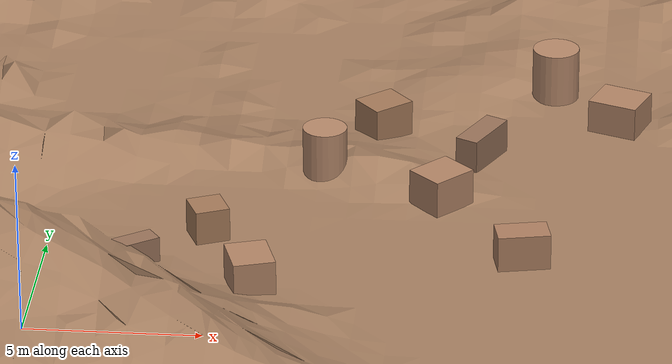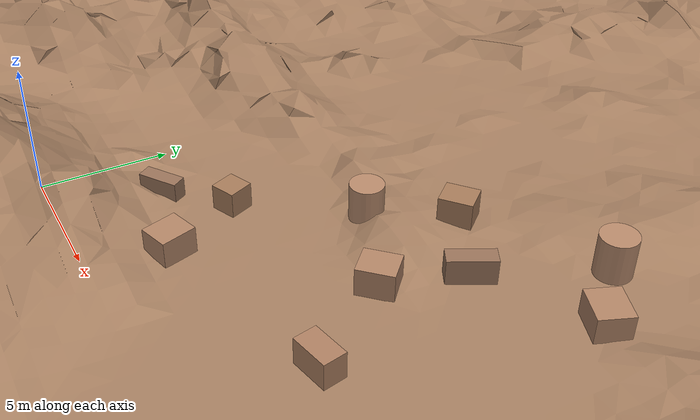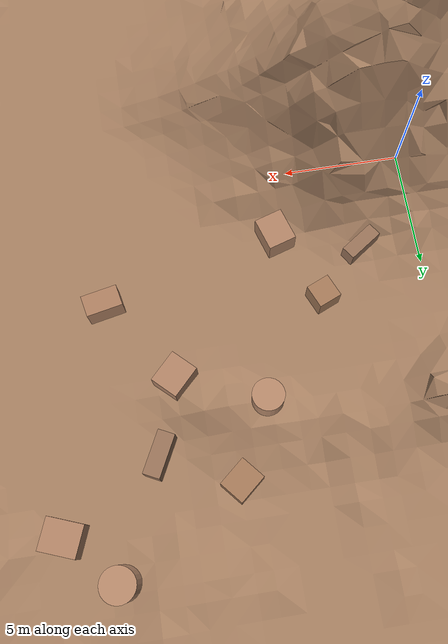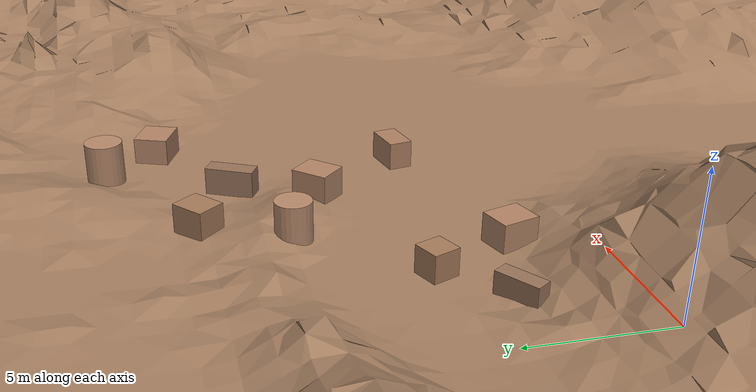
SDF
<?xml version="1.0" ?>
<sdf version="1.8">
  <world name="death_valley_world">
    <physics name="1ms" type="ignored">
      <max_step_size>0.004</max_step_size>
      <real_time_factor>1.0</real_time_factor>
    </physics>

    <plugin filename="gz-sim-physics-system" name="gz::sim::systems::Physics" />
    <plugin filename="gz-sim-user-commands-system" name="gz::sim::systems::UserCommands" />
    <plugin filename="gz-sim-scene-broadcaster-system" name="gz::sim::systems::SceneBroadcaster" />
    <plugin filename="gz-sim-sensors-system" name="gz::sim::systems::Sensors">
      <render_engine>ogre2</render_engine>
    </plugin>
    <plugin filename="gz-sim-imu-system" name="gz::sim::systems::Imu" />

        <gui fullscreen="0">
      <!-- 3D scene -->
      <plugin filename="MinimalScene" name="3D View">
        <gz-gui>
          <title>3D View</title>
          <property type="bool" key="showTitleBar">false</property>
          <property type="string" key="state">docked</property>
        </gz-gui>
        <engine>ogre2</engine>
        <scene>scene</scene>
        <ambient_light>0.45 0.45 0.50</ambient_light>
        <background_color>0.45 0.65 0.85</background_color>
        <camera_pose>0.0 -12.0 8.0 0.0 0.50 1.57</camera_pose>
      </plugin>

      <!-- Interactive Mouse & View Control Plugins -->
      <plugin filename="InteractiveViewControl" name="Interactive view control">
        <gz-gui>
          <property key="resizable" type="bool">false</property>
          <property key="width" type="double">10</property>
          <property key="height" type="double">10</property>
          <property key="state" type="string">floating</property>
          <property key="showTitleBar" type="bool">false</property>
        </gz-gui>
      </plugin>
      <plugin filename="CameraTracking" name="Camera Tracking">
        <gz-gui>
          <property key="resizable" type="bool">false</property>
          <property key="width" type="double">10</property>
          <property key="height" type="double">10</property>
          <property key="state" type="string">floating</property>
          <property key="showTitleBar" type="bool">false</property>
        </gz-gui>
      </plugin>
      <plugin filename="GzSceneManager" name="Scene Manager">
        <gz-gui>
          <property key="resizable" type="bool">false</property>
          <property key="width" type="double">10</property>
          <property key="height" type="double">10</property>
          <property key="state" type="string">floating</property>
          <property key="showTitleBar" type="bool">false</property>
        </gz-gui>
      </plugin>
      <plugin filename="SelectEntities" name="Select Entities">
        <gz-gui>
          <property type="bool" key="showTitleBar">false</property>
          <property type="string" key="state">floating</property>
        </gz-gui>
      </plugin>
      <plugin filename="TransformControl" name="Transform control">
        <gz-gui>
          <property key="resizable" type="bool">false</property>
          <property key="x" type="double">0</property>
          <property key="y" type="double">0</property>
          <property key="width" type="double">250</property>
          <property key="height" type="double">50</property>
          <property key="state" type="string">floating</property>
          <property key="showTitleBar" type="bool">false</property>
          <property key="cardBackground" type="string">#666666</property>
        </gz-gui>
      </plugin>
      <plugin filename="EntityContextMenuPlugin" name="Entity context menu">
        <gz-gui>
          <property key="state" type="string">floating</property>
          <property key="width" type="double">10</property>
          <property key="height" type="double">10</property>
          <property key="showTitleBar" type="bool">false</property>
        </gz-gui>
      </plugin>
      <plugin filename="WorldControl" name="World control">
        <gz-gui>
          <title>World control</title>
          <property type="bool" key="showTitleBar">false</property>
          <property type="bool" key="resizable">false</property>
          <property type="double" key="height">72</property>
          <property type="double" key="width">121</property>
          <property type="double" key="z">1</property>
          <property type="string" key="state">floating</property>
          <property key="showTitleBar" type="bool">false</property>
          <property key="cardBackground" type="string">#666666</property>
        </gz-gui>
        <play_pause>true</play_pause>
        <step>true</step>
        <start_paused>false</start_paused>
        <use_event>true</use_event>
      </plugin>
      <plugin filename="WorldStats" name="World stats">
        <gz-gui>
          <title>World stats</title>
          <property type="bool" key="showTitleBar">false</property>
          <property type="bool" key="resizable">false</property>
          <property type="double" key="height">72</property>
          <property type="double" key="width">290</property>
          <property type="double" key="z">1</property>
          <property type="string" key="state">floating</property>
          <property key="showTitleBar" type="bool">false</property>
          <property key="cardBackground" type="string">#666666</property>
        </gz-gui>
        <sim_time>true</sim_time>
        <real_time>true</real_time>
        <real_time_factor>true</real_time_factor>
        <iterations>true</iterations>
      </plugin>
    </gui>

    <light type="directional" name="sun">
      <cast_shadows>true</cast_shadows>
      <pose>0 0 100 0.4 0.6 0</pose>
      <diffuse>0.82 0.75 0.62 1</diffuse>
      <specular>0.15 0.15 0.15 1</specular>
      <attenuation>
        <range>1000</range>
        <constant>0.9</constant>
        <linear>0.01</linear>
        <quadratic>0.001</quadratic>
      </attenuation>
      <direction>-0.5 0.3 -0.9</direction>
    </light>

    <!-- Death Valley Terrain (Embedded) -->
    <model name="death_valley_terrain">
      <static>true</static>
      <link name="link">
        <collision name="collision">
          <geometry>
            <mesh>
              <uri>/home/ubuntu/sih_ws/install/death_valley_world/share/death_valley_world/meshes/death_valley_collision.stl</uri>
            </mesh>
          </geometry>
          <surface>
            <friction>
              <ode>
                <mu>1.2</mu>
                <mu2>1.2</mu2>
              </ode>
            </friction>
          </surface>
        </collision>
        <visual name="visual">
          <geometry>
            <mesh>
              <uri>/home/ubuntu/sih_ws/install/death_valley_world/share/death_valley_world/meshes/death_valley_visual.obj</uri>
            </mesh>
          </geometry>
                    <material>
            <ambient>0.50 0.38 0.28 1.0</ambient>
            <diffuse>0.65 0.50 0.38 1.0</diffuse>
            <specular>0.05 0.05 0.05 1.0</specular>
          </material>
        </visual>
      </link>
    </model>

    <!-- Natural Desert Obstacles, Boulders & Strategic Blocks -->
    <model name="desert_boulder_1">
      <static>true</static>
      <pose>6.0 3.0 0.5 0 0 0.3</pose>
      <link name="link">
        <collision name="collision">
          <geometry><box><size>1.2 1.4 1.1</size></box></geometry>
        </collision>
        <visual name="visual">
          <geometry><box><size>1.2 1.4 1.1</size></box></geometry>
          <material>
            <ambient>0.6 0.45 0.35 1</ambient>
            <diffuse>0.7 0.52 0.4 1</diffuse>
          </material>
        </visual>
      </link>
    </model>

    <model name="desert_boulder_2">
      <static>true</static>
      <pose>11.0 8.5 0.5 0 0 0.8</pose>
      <link name="link">
        <collision name="collision">
          <geometry><box><size>1.4 1.2 1.2</size></box></geometry>
        </collision>
        <visual name="visual">
          <geometry><box><size>1.4 1.2 1.2</size></box></geometry>
          <material>
            <ambient>0.6 0.45 0.35 1</ambient>
            <diffuse>0.7 0.52 0.4 1</diffuse>
          </material>
        </visual>
      </link>
    </model>

    <model name="desert_boulder_3">
      <static>true</static>
      <pose>16.0 14.0 0.5 0 0 1.2</pose>
      <link name="link">
        <collision name="collision">
          <geometry><box><size>1.3 1.5 1.0</size></box></geometry>
        </collision>
        <visual name="visual">
          <geometry><box><size>1.3 1.5 1.0</size></box></geometry>
          <material>
            <ambient>0.6 0.45 0.35 1</ambient>
            <diffuse>0.7 0.52 0.4 1</diffuse>
          </material>
        </visual>
      </link>
    </model>

    <model name="canyon_block_1">
      <static>true</static>
      <pose>4.5 6.0 0.5 0 0 0.4</pose>
      <link name="link">
        <collision name="collision">
          <geometry><box><size>1.0 1.0 1.0</size></box></geometry>
        </collision>
        <visual name="visual">
          <geometry><box><size>1.0 1.0 1.0</size></box></geometry>
          <material>
            <ambient>0.55 0.4 0.3 1</ambient>
            <diffuse>0.65 0.48 0.35 1</diffuse>
          </material>
        </visual>
      </link>
    </model>

    <model name="canyon_block_2">
      <static>true</static>
      <pose>9.0 13.0 0.5 0 0 0.7</pose>
      <link name="link">
        <collision name="collision">
          <geometry><box><size>1.3 1.1 1.2</size></box></geometry>
        </collision>
        <visual name="visual">
          <geometry><box><size>1.3 1.1 1.2</size></box></geometry>
          <material>
            <ambient>0.55 0.4 0.3 1</ambient>
            <diffuse>0.65 0.48 0.35 1</diffuse>
          </material>
        </visual>
      </link>
    </model>

    <model name="canyon_block_3">
      <static>true</static>
      <pose>13.5 5.0 0.5 0 0 0.2</pose>
      <link name="link">
        <collision name="collision">
          <geometry><box><size>1.5 0.9 1.1</size></box></geometry>
        </collision>
        <visual name="visual">
          <geometry><box><size>1.5 0.9 1.1</size></box></geometry>
          <material>
            <ambient>0.58 0.42 0.32 1</ambient>
            <diffuse>0.68 0.5 0.38 1</diffuse>
          </material>
        </visual>
      </link>
    </model>

    <model name="rock_pillar_1">
      <static>true</static>
      <pose>7.5 10.0 0.8 0 0 0.5</pose>
      <link name="link">
        <collision name="collision">
          <geometry><cylinder><radius>0.65</radius><length>1.6</length></cylinder></geometry>
        </collision>
        <visual name="visual">
          <geometry><cylinder><radius>0.65</radius><length>1.6</length></cylinder></geometry>
          <material>
            <ambient>0.62 0.46 0.36 1</ambient>
            <diffuse>0.72 0.54 0.42 1</diffuse>
          </material>
        </visual>
      </link>
    </model>

    <model name="rock_pillar_2">
      <static>true</static>
      <pose>14.0 16.0 0.8 0 0 0.9</pose>
      <link name="link">
        <collision name="collision">
          <geometry><cylinder><radius>0.7</radius><length>1.6</length></cylinder></geometry>
        </collision>
        <visual name="visual">
          <geometry><cylinder><radius>0.7</radius><length>1.6</length></cylinder></geometry>
          <material>
            <ambient>0.62 0.46 0.36 1</ambient>
            <diffuse>0.72 0.54 0.42 1</diffuse>
          </material>
        </visual>
      </link>
    </model>

    <model name="desert_barrier_1">
      <static>true</static>
      <pose>2.5 4.0 0.4 0 0 0.6</pose>
      <link name="link">
        <collision name="collision">
          <geometry><box><size>1.6 0.6 0.8</size></box></geometry>
        </collision>
        <visual name="visual">
          <geometry><box><size>1.6 0.6 0.8</size></box></geometry>
          <material>
            <ambient>0.5 0.38 0.28 1</ambient>
            <diffuse>0.6 0.45 0.35 1</diffuse>
          </material>
        </visual>
      </link>
    </model>

    <model name="desert_barrier_2">
      <static>true</static>
      <pose>12.0 11.5 0.5 0 0 1.1</pose>
      <link name="link">
        <collision name="collision">
          <geometry><box><size>1.8 0.7 1.0</size></box></geometry>
        </collision>
        <visual name="visual">
          <geometry><box><size>1.8 0.7 1.0</size></box></geometry>
          <material>
            <ambient>0.5 0.38 0.28 1</ambient>
            <diffuse>0.6 0.45 0.35 1</diffuse>
          </material>
        </visual>
      </link>
    </model>

  </world>
</sdf>
